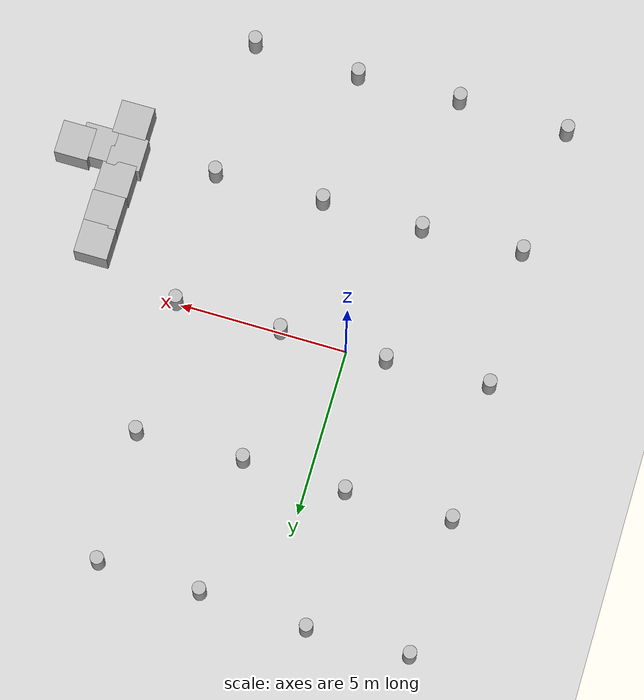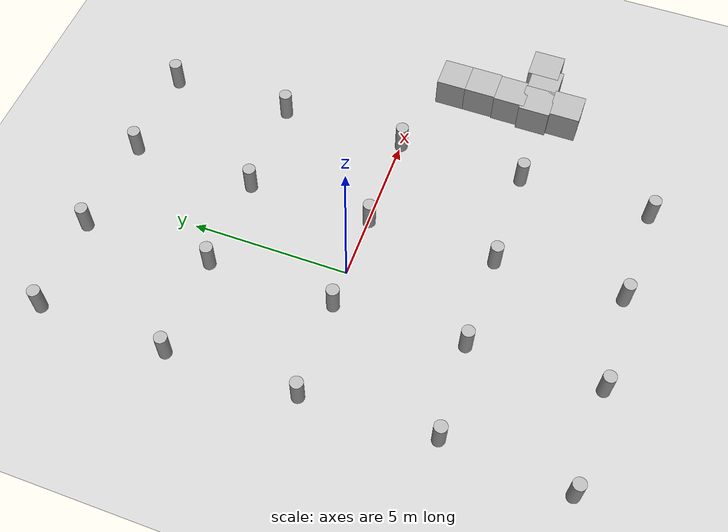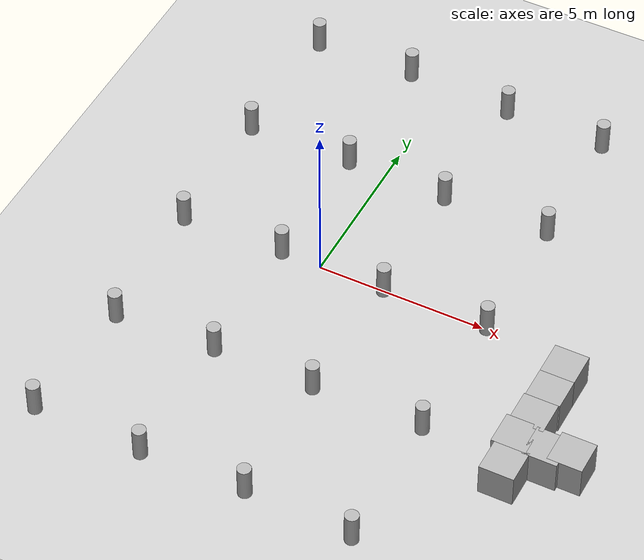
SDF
<sdf version='1.10'>
  <world name='default'>
    <gui fullscreen='false'>
    </gui>
    <gravity>0 0 -9.8000000000000007</gravity>
    <magnetic_field>5.5644999999999998e-06 2.2875799999999999e-05 -4.2388400000000002e-05</magnetic_field>
    <atmosphere type='adiabatic'/>
    <physics name="default_physics" default="true" type="ode">
      <max_step_size>0.004</max_step_size>
      <real_time_update_rate>250</real_time_update_rate>
      <real_time_factor>1.0</real_time_factor>
    </physics>
    <scene>
      <ambient>0.400000006 0.400000006 0.400000006 1</ambient>
      <background>0.699999988 0.699999988 0.699999988 1</background>
      <shadows>false</shadows>
    </scene>
    <model name='ground_plane'>
      <static>true</static>
      <link name='link'>
        <collision name='collision'>
          <geometry>
            <plane>
              <normal>0 0 1</normal>
              <size>100 100</size>
            </plane>
          </geometry>
          <surface>
            <friction>
              <ode/>
            </friction>
            <bounce/>
            <contact/>
          </surface>
        </collision>
        <visual name='visual'>
          <geometry>
            <plane>
              <normal>0 0 1</normal>
              <size>100 100</size>
            </plane>
          </geometry>
          <material>
            <ambient>0.800000012 0.800000012 0.800000012 1</ambient>
            <diffuse>0.800000012 0.800000012 0.800000012 1</diffuse>
            <specular>0.800000012 0.800000012 0.800000012 1</specular>
          </material>
        </visual>
        <pose>0 0 0 0 0 0</pose>
        <inertial>
          <pose>0 0 0 0 0 0</pose>
          <mass>1</mass>
          <inertia>
            <ixx>1</ixx>
            <ixy>0</ixy>
            <ixz>0</ixz>
            <iyy>1</iyy>
            <iyz>0</iyz>
            <izz>1</izz>
          </inertia>
        </inertial>
        <enable_wind>false</enable_wind>
      </link>
      <pose>0 0 0 0 0 0</pose>
      <self_collide>false</self_collide>
    </model>
    <model name='cylinder'>
      <pose>5.1339255686091745 -0.010688066575636243 0.49999942638036005 -4.8616981091685394e-20 8.1439708289973324e-21 -1.1378218790353826e-20</pose>
      <link name='cylinder_link'>
        <inertial>
          <inertia>
            <ixx>0.14580000000000001</ixx>
            <ixy>0</ixy>
            <ixz>0</ixz>
            <iyy>0.14580000000000001</iyy>
            <iyz>0</iyz>
            <izz>0.125</izz>
          </inertia>
          <mass>1</mass>
          <pose>0 0 0 0 0 0</pose>
        </inertial>
        <collision name='cylinder_collision'>
          <geometry>
            <cylinder>
              <radius>0.2</radius>
              <length>1</length>
            </cylinder>
          </geometry>
          <surface>
            <friction>
              <ode/>
            </friction>
            <bounce/>
            <contact/>
          </surface>
        </collision>
        <visual name='cylinder_visual'>
          <geometry>
            <cylinder>
              <radius>0.2</radius>
              <length>1</length>
            </cylinder>
          </geometry>
          <material>
            <ambient>0.300000012 0.300000012 0.300000012 1</ambient>
            <diffuse>0.699999988 0.699999988 0.699999988 1</diffuse>
            <specular>1 1 1 1</specular>
          </material>
        </visual>
        <pose>0 0 0 0 0 0</pose>
        <enable_wind>false</enable_wind>
      </link>
      <static>false</static>
      <self_collide>false</self_collide>
    </model>
    <model name='cylinder_0'>
      <pose>5.1228022763366399 -4.024855594909698 0.49999942638036005 -1.7131886273898227e-19 -2.50501125960319e-19 -3.9855946219985192e-21</pose>
      <link name='cylinder_link'>
        <inertial>
          <inertia>
            <ixx>0.14580000000000001</ixx>
            <ixy>0</ixy>
            <ixz>0</ixz>
            <iyy>0.14580000000000001</iyy>
            <iyz>0</iyz>
            <izz>0.125</izz>
          </inertia>
          <mass>1</mass>
          <pose>0 0 0 0 0 0</pose>
        </inertial>
        <collision name='cylinder_collision'>
          <geometry>
            <cylinder>
              <radius>0.2</radius>
              <length>1</length>
            </cylinder>
          </geometry>
          <surface>
            <friction>
              <ode/>
            </friction>
            <bounce/>
            <contact/>
          </surface>
        </collision>
        <visual name='cylinder_visual'>
          <geometry>
            <cylinder>
              <radius>0.2</radius>
              <length>1</length>
            </cylinder>
          </geometry>
          <material>
            <ambient>0.300000012 0.300000012 0.300000012 1</ambient>
            <diffuse>0.699999988 0.699999988 0.699999988 1</diffuse>
            <specular>1 1 1 1</specular>
          </material>
        </visual>
        <pose>0 0 0 0 0 0</pose>
        <enable_wind>false</enable_wind>
      </link>
      <static>false</static>
      <self_collide>false</self_collide>
    </model>
    <model name='cylinder_1'>
      <pose>5.1228003689880071 -8.1675801257822371 0.49999942638036005 1.4057866496799693e-19 -2.3419469015931686e-19 1.8644964551551558e-20</pose>
      <link name='cylinder_link'>
        <inertial>
          <inertia>
            <ixx>0.14580000000000001</ixx>
            <ixy>0</ixy>
            <ixz>0</ixz>
            <iyy>0.14580000000000001</iyy>
            <iyz>0</iyz>
            <izz>0.125</izz>
          </inertia>
          <mass>1</mass>
          <pose>0 0 0 0 0 0</pose>
        </inertial>
        <collision name='cylinder_collision'>
          <geometry>
            <cylinder>
              <radius>0.2</radius>
              <length>1</length>
            </cylinder>
          </geometry>
          <surface>
            <friction>
              <ode/>
            </friction>
            <bounce/>
            <contact/>
          </surface>
        </collision>
        <visual name='cylinder_visual'>
          <geometry>
            <cylinder>
              <radius>0.2</radius>
              <length>1</length>
            </cylinder>
          </geometry>
          <material>
            <ambient>0.300000012 0.300000012 0.300000012 1</ambient>
            <diffuse>0.699999988 0.699999988 0.699999988 1</diffuse>
            <specular>1 1 1 1</specular>
          </material>
        </visual>
        <pose>0 0 0 0 0 0</pose>
        <enable_wind>false</enable_wind>
      </link>
      <static>false</static>
      <self_collide>false</self_collide>
    </model>
    <model name='cylinder_2'>
      <pose>5.1228060910339055 4.0189328213002824 0.49999942638036005 1.5954055188573789e-19 7.8744536739357726e-20 3.9419045454651281e-21</pose>
      <link name='cylinder_link'>
        <inertial>
          <inertia>
            <ixx>0.14580000000000001</ixx>
            <ixy>0</ixy>
            <ixz>0</ixz>
            <iyy>0.14580000000000001</iyy>
            <iyz>0</iyz>
            <izz>0.125</izz>
          </inertia>
          <mass>1</mass>
          <pose>0 0 0 0 0 0</pose>
        </inertial>
        <collision name='cylinder_collision'>
          <geometry>
            <cylinder>
              <radius>0.2</radius>
              <length>1</length>
            </cylinder>
          </geometry>
          <surface>
            <friction>
              <ode/>
            </friction>
            <bounce/>
            <contact/>
          </surface>
        </collision>
        <visual name='cylinder_visual'>
          <geometry>
            <cylinder>
              <radius>0.2</radius>
              <length>1</length>
            </cylinder>
          </geometry>
          <material>
            <ambient>0.300000012 0.300000012 0.300000012 1</ambient>
            <diffuse>0.699999988 0.699999988 0.699999988 1</diffuse>
            <specular>1 1 1 1</specular>
          </material>
        </visual>
        <pose>0 0 0 0 0 0</pose>
        <enable_wind>false</enable_wind>
      </link>
      <static>false</static>
      <self_collide>false</self_collide>
    </model>
    <model name='cylinder_3'>
      <pose>5.0882854649657903 7.9545211979980168 0.49999942638036005 -5.6443784729488671e-19 -2.6238966374129205e-19 2.2596062755858958e-21</pose>
      <link name='cylinder_link'>
        <inertial>
          <inertia>
            <ixx>0.14580000000000001</ixx>
            <ixy>0</ixy>
            <ixz>0</ixz>
            <iyy>0.14580000000000001</iyy>
            <iyz>0</iyz>
            <izz>0.125</izz>
          </inertia>
          <mass>1</mass>
          <pose>0 0 0 0 0 0</pose>
        </inertial>
        <collision name='cylinder_collision'>
          <geometry>
            <cylinder>
              <radius>0.2</radius>
              <length>1</length>
            </cylinder>
          </geometry>
          <surface>
            <friction>
              <ode/>
            </friction>
            <bounce/>
            <contact/>
          </surface>
        </collision>
        <visual name='cylinder_visual'>
          <geometry>
            <cylinder>
              <radius>0.2</radius>
              <length>1</length>
            </cylinder>
          </geometry>
          <material>
            <ambient>0.300000012 0.300000012 0.300000012 1</ambient>
            <diffuse>0.699999988 0.699999988 0.699999988 1</diffuse>
            <specular>1 1 1 1</specular>
          </material>
        </visual>
        <pose>0 0 0 0 0 0</pose>
        <enable_wind>false</enable_wind>
      </link>
      <static>false</static>
      <self_collide>false</self_collide>
    </model>
    <model name='cylinder_4'>
      <pose>2.050288219177216 7.9890451619262395 0.49999942638036005 -1.7938851079827487e-19 5.8514255683497105e-21 -3.8353579460513239e-20</pose>
      <link name='cylinder_link'>
        <inertial>
          <inertia>
            <ixx>0.14580000000000001</ixx>
            <ixy>0</ixy>
            <ixz>0</ixz>
            <iyy>0.14580000000000001</iyy>
            <iyz>0</iyz>
            <izz>0.125</izz>
          </inertia>
          <mass>1</mass>
          <pose>0 0 0 0 0 0</pose>
        </inertial>
        <collision name='cylinder_collision'>
          <geometry>
            <cylinder>
              <radius>0.2</radius>
              <length>1</length>
            </cylinder>
          </geometry>
          <surface>
            <friction>
              <ode/>
            </friction>
            <bounce/>
            <contact/>
          </surface>
        </collision>
        <visual name='cylinder_visual'>
          <geometry>
            <cylinder>
              <radius>0.2</radius>
              <length>1</length>
            </cylinder>
          </geometry>
          <material>
            <ambient>0.300000012 0.300000012 0.300000012 1</ambient>
            <diffuse>0.699999988 0.699999988 0.699999988 1</diffuse>
            <specular>1 1 1 1</specular>
          </material>
        </visual>
        <pose>0 0 0 0 0 0</pose>
        <enable_wind>false</enable_wind>
      </link>
      <static>false</static>
      <self_collide>false</self_collide>
    </model>
    <model name='cylinder_5'>
      <pose>1.9467177579040229 3.9498899086720014 0.49999942638036005 2.82621450183579e-19 1.7047958054337307e-19 -1.2371452183336585e-20</pose>
      <link name='cylinder_link'>
        <inertial>
          <inertia>
            <ixx>0.14580000000000001</ixx>
            <ixy>0</ixy>
            <ixz>0</ixz>
            <iyy>0.14580000000000001</iyy>
            <iyz>0</iyz>
            <izz>0.125</izz>
          </inertia>
          <mass>1</mass>
          <pose>0 0 0 0 0 0</pose>
        </inertial>
        <collision name='cylinder_collision'>
          <geometry>
            <cylinder>
              <radius>0.2</radius>
              <length>1</length>
            </cylinder>
          </geometry>
          <surface>
            <friction>
              <ode/>
            </friction>
            <bounce/>
            <contact/>
          </surface>
        </collision>
        <visual name='cylinder_visual'>
          <geometry>
            <cylinder>
              <radius>0.2</radius>
              <length>1</length>
            </cylinder>
          </geometry>
          <material>
            <ambient>0.300000012 0.300000012 0.300000012 1</ambient>
            <diffuse>0.699999988 0.699999988 0.699999988 1</diffuse>
            <specular>1 1 1 1</specular>
          </material>
        </visual>
        <pose>0 0 0 0 0 0</pose>
        <enable_wind>false</enable_wind>
      </link>
      <static>false</static>
      <self_collide>false</self_collide>
    </model>
    <model name='cylinder_6'>
      <pose>1.9812386181717156 -0.020220737731963475 0.49999942638036005 3.8633833097373467e-19 2.4317860879336467e-20 -1.4550531864972856e-20</pose>
      <link name='cylinder_link'>
        <inertial>
          <inertia>
            <ixx>0.14580000000000001</ixx>
            <ixy>0</ixy>
            <ixz>0</ixz>
            <iyy>0.14580000000000001</iyy>
            <iyz>0</iyz>
            <izz>0.125</izz>
          </inertia>
          <mass>1</mass>
          <pose>0 0 0 0 0 0</pose>
        </inertial>
        <collision name='cylinder_collision'>
          <geometry>
            <cylinder>
              <radius>0.2</radius>
              <length>1</length>
            </cylinder>
          </geometry>
          <surface>
            <friction>
              <ode/>
            </friction>
            <bounce/>
            <contact/>
          </surface>
        </collision>
        <visual name='cylinder_visual'>
          <geometry>
            <cylinder>
              <radius>0.2</radius>
              <length>1</length>
            </cylinder>
          </geometry>
          <material>
            <ambient>0.300000012 0.300000012 0.300000012 1</ambient>
            <diffuse>0.699999988 0.699999988 0.699999988 1</diffuse>
            <specular>1 1 1 1</specular>
          </material>
        </visual>
        <pose>0 0 0 0 0 0</pose>
        <enable_wind>false</enable_wind>
      </link>
      <static>false</static>
      <self_collide>false</self_collide>
    </model>
    <model name='cylinder_7'>
      <pose>1.877668399536103 -4.0939006617431941 0.49999942638036005 -1.6633044813193532e-19 -2.97189774269303e-19 2.3076812657648562e-20</pose>
      <link name='cylinder_link'>
        <inertial>
          <inertia>
            <ixx>0.14580000000000001</ixx>
            <ixy>0</ixy>
            <ixz>0</ixz>
            <iyy>0.14580000000000001</iyy>
            <iyz>0</iyz>
            <izz>0.125</izz>
          </inertia>
          <mass>1</mass>
          <pose>0 0 0 0 0 0</pose>
        </inertial>
        <collision name='cylinder_collision'>
          <geometry>
            <cylinder>
              <radius>0.2</radius>
              <length>1</length>
            </cylinder>
          </geometry>
          <surface>
            <friction>
              <ode/>
            </friction>
            <bounce/>
            <contact/>
          </surface>
        </collision>
        <visual name='cylinder_visual'>
          <geometry>
            <cylinder>
              <radius>0.2</radius>
              <length>1</length>
            </cylinder>
          </geometry>
          <material>
            <ambient>0.300000012 0.300000012 0.300000012 1</ambient>
            <diffuse>0.699999988 0.699999988 0.699999988 1</diffuse>
            <specular>1 1 1 1</specular>
          </material>
        </visual>
        <pose>0 0 0 0 0 0</pose>
        <enable_wind>false</enable_wind>
      </link>
      <static>false</static>
      <self_collide>false</self_collide>
    </model>
    <model name='cylinder_8'>
      <pose>1.9467120358581245 -8.0640091876718856 0.49999942638036005 3.7391216303084624e-19 -1.2077350755864166e-19 -1.9381798199829099e-20</pose>
      <link name='cylinder_link'>
        <inertial>
          <inertia>
            <ixx>0.14580000000000001</ixx>
            <ixy>0</ixy>
            <ixz>0</ixz>
            <iyy>0.14580000000000001</iyy>
            <iyz>0</iyz>
            <izz>0.125</izz>
          </inertia>
          <mass>1</mass>
          <pose>0 0 0 0 0 0</pose>
        </inertial>
        <collision name='cylinder_collision'>
          <geometry>
            <cylinder>
              <radius>0.2</radius>
              <length>1</length>
            </cylinder>
          </geometry>
          <surface>
            <friction>
              <ode/>
            </friction>
            <bounce/>
            <contact/>
          </surface>
        </collision>
        <visual name='cylinder_visual'>
          <geometry>
            <cylinder>
              <radius>0.2</radius>
              <length>1</length>
            </cylinder>
          </geometry>
          <material>
            <ambient>0.300000012 0.300000012 0.300000012 1</ambient>
            <diffuse>0.699999988 0.699999988 0.699999988 1</diffuse>
            <specular>1 1 1 1</specular>
          </material>
        </visual>
        <pose>0 0 0 0 0 0</pose>
        <enable_wind>false</enable_wind>
      </link>
      <static>false</static>
      <self_collide>false</self_collide>
    </model>
    <model name='cylinder_9'>
      <pose>-1.1258081009750665 -8.1675772647592879 0.49999942638036005 -8.8186155726113733e-20 3.3683031785694115e-19 -2.6488266237517442e-20</pose>
      <link name='cylinder_link'>
        <inertial>
          <inertia>
            <ixx>0.14580000000000001</ixx>
            <ixy>0</ixy>
            <ixz>0</ixz>
            <iyy>0.14580000000000001</iyy>
            <iyz>0</iyz>
            <izz>0.125</izz>
          </inertia>
          <mass>1</mass>
          <pose>0 0 0 0 0 0</pose>
        </inertial>
        <collision name='cylinder_collision'>
          <geometry>
            <cylinder>
              <radius>0.2</radius>
              <length>1</length>
            </cylinder>
          </geometry>
          <surface>
            <friction>
              <ode/>
            </friction>
            <bounce/>
            <contact/>
          </surface>
        </collision>
        <visual name='cylinder_visual'>
          <geometry>
            <cylinder>
              <radius>0.2</radius>
              <length>1</length>
            </cylinder>
          </geometry>
          <material>
            <ambient>0.300000012 0.300000012 0.300000012 1</ambient>
            <diffuse>0.699999988 0.699999988 0.699999988 1</diffuse>
            <specular>1 1 1 1</specular>
          </material>
        </visual>
        <pose>0 0 0 0 0 0</pose>
        <enable_wind>false</enable_wind>
      </link>
      <static>false</static>
      <self_collide>false</self_collide>
    </model>
    <model name='cylinder_10'>
      <pose>-1.1258061936264336 -4.0938987543945613 0.49999942638036005 -1.2222640838369968e-19 1.9272850389414396e-19 1.3506147628184539e-20</pose>
      <link name='cylinder_link'>
        <inertial>
          <inertia>
            <ixx>0.14580000000000001</ixx>
            <ixy>0</ixy>
            <ixz>0</ixz>
            <iyy>0.14580000000000001</iyy>
            <iyz>0</iyz>
            <izz>0.125</izz>
          </inertia>
          <mass>1</mass>
          <pose>0 0 0 0 0 0</pose>
        </inertial>
        <collision name='cylinder_collision'>
          <geometry>
            <cylinder>
              <radius>0.2</radius>
              <length>1</length>
            </cylinder>
          </geometry>
          <surface>
            <friction>
              <ode/>
            </friction>
            <bounce/>
            <contact/>
          </surface>
        </collision>
        <visual name='cylinder_visual'>
          <geometry>
            <cylinder>
              <radius>0.2</radius>
              <length>1</length>
            </cylinder>
          </geometry>
          <material>
            <ambient>0.300000012 0.300000012 0.300000012 1</ambient>
            <diffuse>0.699999988 0.699999988 0.699999988 1</diffuse>
            <specular>1 1 1 1</specular>
          </material>
        </visual>
        <pose>0 0 0 0 0 0</pose>
        <enable_wind>false</enable_wind>
      </link>
      <static>false</static>
      <self_collide>false</self_collide>
    </model>
    <model name='cylinder_11'>
      <pose>-1.1948498299484551 -0.020219307220488866 0.49999942638036005 4.4863003604792616e-19 3.8006013583344366e-20 3.0475399066543794e-20</pose>
      <link name='cylinder_link'>
        <inertial>
          <inertia>
            <ixx>0.14580000000000001</ixx>
            <ixy>0</ixy>
            <ixz>0</ixz>
            <iyy>0.14580000000000001</iyy>
            <iyz>0</iyz>
            <izz>0.125</izz>
          </inertia>
          <mass>1</mass>
          <pose>0 0 0 0 0 0</pose>
        </inertial>
        <collision name='cylinder_collision'>
          <geometry>
            <cylinder>
              <radius>0.2</radius>
              <length>1</length>
            </cylinder>
          </geometry>
          <surface>
            <friction>
              <ode/>
            </friction>
            <bounce/>
            <contact/>
          </surface>
        </collision>
        <visual name='cylinder_visual'>
          <geometry>
            <cylinder>
              <radius>0.2</radius>
              <length>1</length>
            </cylinder>
          </geometry>
          <material>
            <ambient>0.300000012 0.300000012 0.300000012 1</ambient>
            <diffuse>0.699999988 0.699999988 0.699999988 1</diffuse>
            <specular>1 1 1 1</specular>
          </material>
        </visual>
        <pose>0 0 0 0 0 0</pose>
        <enable_wind>false</enable_wind>
      </link>
      <static>false</static>
      <self_collide>false</self_collide>
    </model>
    <model name='cylinder_12'>
      <pose>-1.125802378929168 4.0189361760253606 0.49999942638036005 -1.2472718708487499e-19 -1.2445423248991479e-19 -2.2675437583297554e-20</pose>
      <link name='cylinder_link'>
        <inertial>
          <inertia>
            <ixx>0.14580000000000001</ixx>
            <ixy>0</ixy>
            <ixz>0</ixz>
            <iyy>0.14580000000000001</iyy>
            <iyz>0</iyz>
            <izz>0.125</izz>
          </inertia>
          <mass>1</mass>
          <pose>0 0 0 0 0 0</pose>
        </inertial>
        <collision name='cylinder_collision'>
          <geometry>
            <cylinder>
              <radius>0.2</radius>
              <length>1</length>
            </cylinder>
          </geometry>
          <surface>
            <friction>
              <ode/>
            </friction>
            <bounce/>
            <contact/>
          </surface>
        </collision>
        <visual name='cylinder_visual'>
          <geometry>
            <cylinder>
              <radius>0.2</radius>
              <length>1</length>
            </cylinder>
          </geometry>
          <material>
            <ambient>0.300000012 0.300000012 0.300000012 1</ambient>
            <diffuse>0.699999988 0.699999988 0.699999988 1</diffuse>
            <specular>1 1 1 1</specular>
          </material>
        </visual>
        <pose>0 0 0 0 0 0</pose>
        <enable_wind>false</enable_wind>
      </link>
      <static>false</static>
      <self_collide>false</self_collide>
    </model>
    <model name='cylinder_13'>
      <pose>-1.1603230049972832 8.1616607068978997 0.49999942638036005 -1.7222844124278922e-19 4.1233518327359799e-19 2.5332280340787763e-20</pose>
      <link name='cylinder_link'>
        <inertial>
          <inertia>
            <ixx>0.14580000000000001</ixx>
            <ixy>0</ixy>
            <ixz>0</ixz>
            <iyy>0.14580000000000001</iyy>
            <iyz>0</iyz>
            <izz>0.125</izz>
          </inertia>
          <mass>1</mass>
          <pose>0 0 0 0 0 0</pose>
        </inertial>
        <collision name='cylinder_collision'>
          <geometry>
            <cylinder>
              <radius>0.2</radius>
              <length>1</length>
            </cylinder>
          </geometry>
          <surface>
            <friction>
              <ode/>
            </friction>
            <bounce/>
            <contact/>
          </surface>
        </collision>
        <visual name='cylinder_visual'>
          <geometry>
            <cylinder>
              <radius>0.2</radius>
              <length>1</length>
            </cylinder>
          </geometry>
          <material>
            <ambient>0.300000012 0.300000012 0.300000012 1</ambient>
            <diffuse>0.699999988 0.699999988 0.699999988 1</diffuse>
            <specular>1 1 1 1</specular>
          </material>
        </visual>
        <pose>0 0 0 0 0 0</pose>
        <enable_wind>false</enable_wind>
      </link>
      <static>false</static>
      <self_collide>false</self_collide>
    </model>
    <model name='cylinder_14'>
      <pose>-4.1983203699951472 8.09261659373872 0.49999942638036005 4.4470444700310609e-19 -5.6174624309786576e-19 -6.2478371277620025e-21</pose>
      <link name='cylinder_link'>
        <inertial>
          <inertia>
            <ixx>0.14580000000000001</ixx>
            <ixy>0</ixy>
            <ixz>0</ixz>
            <iyy>0.14580000000000001</iyy>
            <iyz>0</iyz>
            <izz>0.125</izz>
          </inertia>
          <mass>1</mass>
          <pose>0 0 0 0 0 0</pose>
        </inertial>
        <collision name='cylinder_collision'>
          <geometry>
            <cylinder>
              <radius>0.2</radius>
              <length>1</length>
            </cylinder>
          </geometry>
          <surface>
            <friction>
              <ode/>
            </friction>
            <bounce/>
            <contact/>
          </surface>
        </collision>
        <visual name='cylinder_visual'>
          <geometry>
            <cylinder>
              <radius>0.2</radius>
              <length>1</length>
            </cylinder>
          </geometry>
          <material>
            <ambient>0.300000012 0.300000012 0.300000012 1</ambient>
            <diffuse>0.699999988 0.699999988 0.699999988 1</diffuse>
            <specular>1 1 1 1</specular>
          </material>
        </visual>
        <pose>0 0 0 0 0 0</pose>
        <enable_wind>false</enable_wind>
      </link>
      <static>false</static>
      <self_collide>false</self_collide>
    </model>
    <model name='cylinder_15'>
      <pose>-4.3018908312683406 3.9844153031116987 0.49999942638036005 -1.5464536191000017e-19 3.6505824852097376e-20 -5.0701382082846061e-22</pose>
      <link name='cylinder_link'>
        <inertial>
          <inertia>
            <ixx>0.14580000000000001</ixx>
            <ixy>0</ixy>
            <ixz>0</ixz>
            <iyy>0.14580000000000001</iyy>
            <iyz>0</iyz>
            <izz>0.125</izz>
          </inertia>
          <mass>1</mass>
          <pose>0 0 0 0 0 0</pose>
        </inertial>
        <collision name='cylinder_collision'>
          <geometry>
            <cylinder>
              <radius>0.2</radius>
              <length>1</length>
            </cylinder>
          </geometry>
          <surface>
            <friction>
              <ode/>
            </friction>
            <bounce/>
            <contact/>
          </surface>
        </collision>
        <visual name='cylinder_visual'>
          <geometry>
            <cylinder>
              <radius>0.2</radius>
              <length>1</length>
            </cylinder>
          </geometry>
          <material>
            <ambient>0.300000012 0.300000012 0.300000012 1</ambient>
            <diffuse>0.699999988 0.699999988 0.699999988 1</diffuse>
            <specular>1 1 1 1</specular>
          </material>
        </visual>
        <pose>0 0 0 0 0 0</pose>
        <enable_wind>false</enable_wind>
      </link>
      <static>false</static>
      <self_collide>false</self_collide>
    </model>
    <model name='cylinder_16'>
      <pose>-4.2673697283630672 -0.12378690747073301 0.49999942638036005 1.8559790556192357e-19 8.5715472825601755e-20 -1.1796551453034097e-20</pose>
      <link name='cylinder_link'>
        <inertial>
          <inertia>
            <ixx>0.14580000000000001</ixx>
            <ixy>0</ixy>
            <ixz>0</ixz>
            <iyy>0.14580000000000001</iyy>
            <iyz>0</iyz>
            <izz>0.125</izz>
          </inertia>
          <mass>1</mass>
          <pose>0 0 0 0 0 0</pose>
        </inertial>
        <collision name='cylinder_collision'>
          <geometry>
            <cylinder>
              <radius>0.2</radius>
              <length>1</length>
            </cylinder>
          </geometry>
          <surface>
            <friction>
              <ode/>
            </friction>
            <bounce/>
            <contact/>
          </surface>
        </collision>
        <visual name='cylinder_visual'>
          <geometry>
            <cylinder>
              <radius>0.2</radius>
              <length>1</length>
            </cylinder>
          </geometry>
          <material>
            <ambient>0.300000012 0.300000012 0.300000012 1</ambient>
            <diffuse>0.699999988 0.699999988 0.699999988 1</diffuse>
            <specular>1 1 1 1</specular>
          </material>
        </visual>
        <pose>0 0 0 0 0 0</pose>
        <enable_wind>false</enable_wind>
      </link>
      <static>false</static>
      <self_collide>false</self_collide>
    </model>
    <model name='cylinder_17'>
      <pose>-4.1292805483703914 -4.2319869807129207 0.49999942638036005 -6.8757922377232182e-20 -2.5225599343313602e-19 -7.3097129171155866e-21</pose>
      <link name='cylinder_link'>
        <inertial>
          <inertia>
            <ixx>0.14580000000000001</ixx>
            <ixy>0</ixy>
            <ixz>0</ixz>
            <iyy>0.14580000000000001</iyy>
            <iyz>0</iyz>
            <izz>0.125</izz>
          </inertia>
          <mass>1</mass>
          <pose>0 0 0 0 0 0</pose>
        </inertial>
        <collision name='cylinder_collision'>
          <geometry>
            <cylinder>
              <radius>0.2</radius>
              <length>1</length>
            </cylinder>
          </geometry>
          <surface>
            <friction>
              <ode/>
            </friction>
            <bounce/>
            <contact/>
          </surface>
        </collision>
        <visual name='cylinder_visual'>
          <geometry>
            <cylinder>
              <radius>0.2</radius>
              <length>1</length>
            </cylinder>
          </geometry>
          <material>
            <ambient>0.300000012 0.300000012 0.300000012 1</ambient>
            <diffuse>0.699999988 0.699999988 0.699999988 1</diffuse>
            <specular>1 1 1 1</specular>
          </material>
        </visual>
        <pose>0 0 0 0 0 0</pose>
        <enable_wind>false</enable_wind>
      </link>
      <static>false</static>
      <self_collide>false</self_collide>
    </model>
    <model name='cylinder_18'>
      <pose>-4.4054651072387996 -8.098530290577159 0.49999942638036005 1.2501544832168666e-19 -9.3177369233964667e-20 5.3720966670632648e-21</pose>
      <link name='cylinder_link'>
        <inertial>
          <inertia>
            <ixx>0.14580000000000001</ixx>
            <ixy>0</ixy>
            <ixz>0</ixz>
            <iyy>0.14580000000000001</iyy>
            <iyz>0</iyz>
            <izz>0.125</izz>
          </inertia>
          <mass>1</mass>
          <pose>0 0 0 0 0 0</pose>
        </inertial>
        <collision name='cylinder_collision'>
          <geometry>
            <cylinder>
              <radius>0.2</radius>
              <length>1</length>
            </cylinder>
          </geometry>
          <surface>
            <friction>
              <ode/>
            </friction>
            <bounce/>
            <contact/>
          </surface>
        </collision>
        <visual name='cylinder_visual'>
          <geometry>
            <cylinder>
              <radius>0.2</radius>
              <length>1</length>
            </cylinder>
          </geometry>
          <material>
            <ambient>0.300000012 0.300000012 0.300000012 1</ambient>
            <diffuse>0.699999988 0.699999988 0.699999988 1</diffuse>
            <specular>1 1 1 1</specular>
          </material>
        </visual>
        <pose>0 0 0 0 0 0</pose>
        <enable_wind>false</enable_wind>
      </link>
      <static>false</static>
      <self_collide>false</self_collide>
    </model>
    <model name='box'>
      <pose>7.8500969329681833 -0.9764259027549248 0.49999999020140617 -1.9601780325291378e-08 -1.5816914601972786e-11 3.3087183675733151e-06</pose>
      <link name='box_link'>
        <inertial>
          <inertia>
            <ixx>0.16666</ixx>
            <ixy>0</ixy>
            <ixz>0</ixz>
            <iyy>0.16666</iyy>
            <iyz>0</iyz>
            <izz>0.16666</izz>
          </inertia>
          <mass>1</mass>
          <pose>0 0 0 0 0 0</pose>
        </inertial>
        <collision name='box_collision'>
          <geometry>
            <box>
              <size>1 1 1</size>
            </box>
          </geometry>
          <surface>
            <friction>
              <ode/>
            </friction>
            <bounce/>
            <contact/>
          </surface>
        </collision>
        <visual name='box_visual'>
          <geometry>
            <box>
              <size>1 1 1</size>
            </box>
          </geometry>
          <material>
            <ambient>0.300000012 0.300000012 0.300000012 1</ambient>
            <diffuse>0.699999988 0.699999988 0.699999988 1</diffuse>
            <specular>1 1 1 1</specular>
          </material>
        </visual>
        <pose>0 0 0 0 0 0</pose>
        <enable_wind>false</enable_wind>
      </link>
      <static>false</static>
      <self_collide>false</self_collide>
    </model>
    <model name='box_0'>
      <pose>7.8500965257294357 -1.9120055058146979 0.49999999019887265 -1.9581484351508827e-08 -1.7594219090324413e-11 8.35488166894437e-06</pose>
      <link name='box_link'>
        <inertial>
          <inertia>
            <ixx>0.16666</ixx>
            <ixy>0</ixy>
            <ixz>0</ixz>
            <iyy>0.16666</iyy>
            <iyz>0</iyz>
            <izz>0.16666</izz>
          </inertia>
          <mass>1</mass>
          <pose>0 0 0 0 0 0</pose>
        </inertial>
        <collision name='box_collision'>
          <geometry>
            <box>
              <size>1 1 1</size>
            </box>
          </geometry>
          <surface>
            <friction>
              <ode/>
            </friction>
            <bounce/>
            <contact/>
          </surface>
        </collision>
        <visual name='box_visual'>
          <geometry>
            <box>
              <size>1 1 1</size>
            </box>
          </geometry>
          <material>
            <ambient>0.300000012 0.300000012 0.300000012 1</ambient>
            <diffuse>0.699999988 0.699999988 0.699999988 1</diffuse>
            <specular>1 1 1 1</specular>
          </material>
        </visual>
        <pose>0 0 0 0 0 0</pose>
        <enable_wind>false</enable_wind>
      </link>
      <static>false</static>
      <self_collide>false</self_collide>
    </model>
    <model name='box_1'>
      <pose>7.8155734261023992 -2.9120057564240391 0.49999999019996572 -1.955896943670211e-08 -2.0536285919041752e-11 8.3744356544822529e-06</pose>
      <link name='box_link'>
        <inertial>
          <inertia>
            <ixx>0.16666</ixx>
            <ixy>0</ixy>
            <ixz>0</ixz>
            <iyy>0.16666</iyy>
            <iyz>0</iyz>
            <izz>0.16666</izz>
          </inertia>
          <mass>1</mass>
          <pose>0 0 0 0 0 0</pose>
        </inertial>
        <collision name='box_collision'>
          <geometry>
            <box>
              <size>1 1 1</size>
            </box>
          </geometry>
          <surface>
            <friction>
              <ode/>
            </friction>
            <bounce/>
            <contact/>
          </surface>
        </collision>
        <visual name='box_visual'>
          <geometry>
            <box>
              <size>1 1 1</size>
            </box>
          </geometry>
          <material>
            <ambient>0.300000012 0.300000012 0.300000012 1</ambient>
            <diffuse>0.699999988 0.699999988 0.699999988 1</diffuse>
            <specular>1 1 1 1</specular>
          </material>
        </visual>
        <pose>0 0 0 0 0 0</pose>
        <enable_wind>false</enable_wind>
      </link>
      <static>false</static>
      <self_collide>false</self_collide>
    </model>
    <model name='box_2'>
      <pose>7.7113763236928259 -3.7771624721600348 0.49999999996160976 3.9103293066802359e-08 -3.9084950001945568e-08 9.987754744984373e-06</pose>
      <link name='box_link'>
        <inertial>
          <inertia>
            <ixx>0.16666</ixx>
            <ixy>0</ixy>
            <ixz>0</ixz>
            <iyy>0.16666</iyy>
            <iyz>0</iyz>
            <izz>0.16666</izz>
          </inertia>
          <mass>1</mass>
          <pose>0 0 0 0 0 0</pose>
        </inertial>
        <collision name='box_collision'>
          <geometry>
            <box>
              <size>1 1 1</size>
            </box>
          </geometry>
          <surface>
            <friction>
              <ode/>
            </friction>
            <bounce/>
            <contact/>
          </surface>
        </collision>
        <visual name='box_visual'>
          <geometry>
            <box>
              <size>1 1 1</size>
            </box>
          </geometry>
          <material>
            <ambient>0.300000012 0.300000012 0.300000012 1</ambient>
            <diffuse>0.699999988 0.699999988 0.699999988 1</diffuse>
            <specular>1 1 1 1</specular>
          </material>
        </visual>
        <pose>0 0 0 0 0 0</pose>
        <enable_wind>false</enable_wind>
      </link>
      <static>false</static>
      <self_collide>false</self_collide>
    </model>
    <model name='box_3'>
      <pose>8.6101812611947448 -3.8109147230005691 0.49999999020857111 1.9622878751263982e-08 9.0039399232187455e-11 2.0312445185061143e-05</pose>
      <link name='box_link'>
        <inertial>
          <inertia>
            <ixx>0.16666</ixx>
            <ixy>0</ixy>
            <ixz>0</ixz>
            <iyy>0.16666</iyy>
            <iyz>0</iyz>
            <izz>0.16666</izz>
          </inertia>
          <mass>1</mass>
          <pose>0 0 0 0 0 0</pose>
        </inertial>
        <collision name='box_collision'>
          <geometry>
            <box>
              <size>1 1 1</size>
            </box>
          </geometry>
          <surface>
            <friction>
              <ode/>
            </friction>
            <bounce/>
            <contact/>
          </surface>
        </collision>
        <visual name='box_visual'>
          <geometry>
            <box>
              <size>1 1 1</size>
            </box>
          </geometry>
          <material>
            <ambient>0.300000012 0.300000012 0.300000012 1</ambient>
            <diffuse>0.699999988 0.699999988 0.699999988 1</diffuse>
            <specular>1 1 1 1</specular>
          </material>
        </visual>
        <pose>0 0 0 0 0 0</pose>
        <enable_wind>false</enable_wind>
      </link>
      <static>false</static>
      <self_collide>false</self_collide>
    </model>
    <model name='box_4'>
      <pose>9.2661717655759279 -3.6796370514607846 0.49999999020239055 2.2072401483671983e-11 1.954514518696102e-08 2.0286505250572668e-05</pose>
      <link name='box_link'>
        <inertial>
          <inertia>
            <ixx>0.16666</ixx>
            <ixy>0</ixy>
            <ixz>0</ixz>
            <iyy>0.16666</iyy>
            <iyz>0</iyz>
            <izz>0.16666</izz>
          </inertia>
          <mass>1</mass>
          <pose>0 0 0 0 0 0</pose>
        </inertial>
        <collision name='box_collision'>
          <geometry>
            <box>
              <size>1 1 1</size>
            </box>
          </geometry>
          <surface>
            <friction>
              <ode/>
            </friction>
            <bounce/>
            <contact/>
          </surface>
        </collision>
        <visual name='box_visual'>
          <geometry>
            <box>
              <size>1 1 1</size>
            </box>
          </geometry>
          <material>
            <ambient>0.300000012 0.300000012 0.300000012 1</ambient>
            <diffuse>0.699999988 0.699999988 0.699999988 1</diffuse>
            <specular>1 1 1 1</specular>
          </material>
        </visual>
        <pose>0 0 0 0 0 0</pose>
        <enable_wind>false</enable_wind>
      </link>
      <static>false</static>
      <self_collide>false</self_collide>
    </model>
    <model name='box_5'>
      <pose>7.8155720755253233 -4.7398144478724547 0.49999999019640479 1.9572145955645757e-08 1.8973236140865469e-12 -2.3694659146557155e-06</pose>
      <link name='box_link'>
        <inertial>
          <inertia>
            <ixx>0.16666</ixx>
            <ixy>0</ixy>
            <ixz>0</ixz>
            <iyy>0.16666</iyy>
            <iyz>0</iyz>
            <izz>0.16666</izz>
          </inertia>
          <mass>1</mass>
          <pose>0 0 0 0 0 0</pose>
        </inertial>
        <collision name='box_collision'>
          <geometry>
            <box>
              <size>1 1 1</size>
            </box>
          </geometry>
          <surface>
            <friction>
              <ode/>
            </friction>
            <bounce/>
            <contact/>
          </surface>
        </collision>
        <visual name='box_visual'>
          <geometry>
            <box>
              <size>1 1 1</size>
            </box>
          </geometry>
          <material>
            <ambient>0.300000012 0.300000012 0.300000012 1</ambient>
            <diffuse>0.699999988 0.699999988 0.699999988 1</diffuse>
            <specular>1 1 1 1</specular>
          </material>
        </visual>
        <pose>0 0 0 0 0 0</pose>
        <enable_wind>false</enable_wind>
      </link>
      <static>false</static>
      <self_collide>false</self_collide>
    </model>
    <light name='sun' type='directional'>
      <pose>0 0 10 0 0 0</pose>
      <cast_shadows>true</cast_shadows>
      <intensity>1</intensity>
      <direction>-0.5 0.10000000000000001 -0.90000000000000002</direction>
      <diffuse>0.800000012 0.800000012 0.800000012 1</diffuse>
      <specular>0.200000003 0.200000003 0.200000003 1</specular>
      <attenuation>
        <range>1000</range>
        <linear>0.01</linear>
        <constant>0.90000000000000002</constant>
        <quadratic>0.001</quadratic>
      </attenuation>
      <spot>
        <inner_angle>0</inner_angle>
        <outer_angle>0</outer_angle>
        <falloff>0</falloff>
      </spot>
    </light>
  </world>
</sdf>
